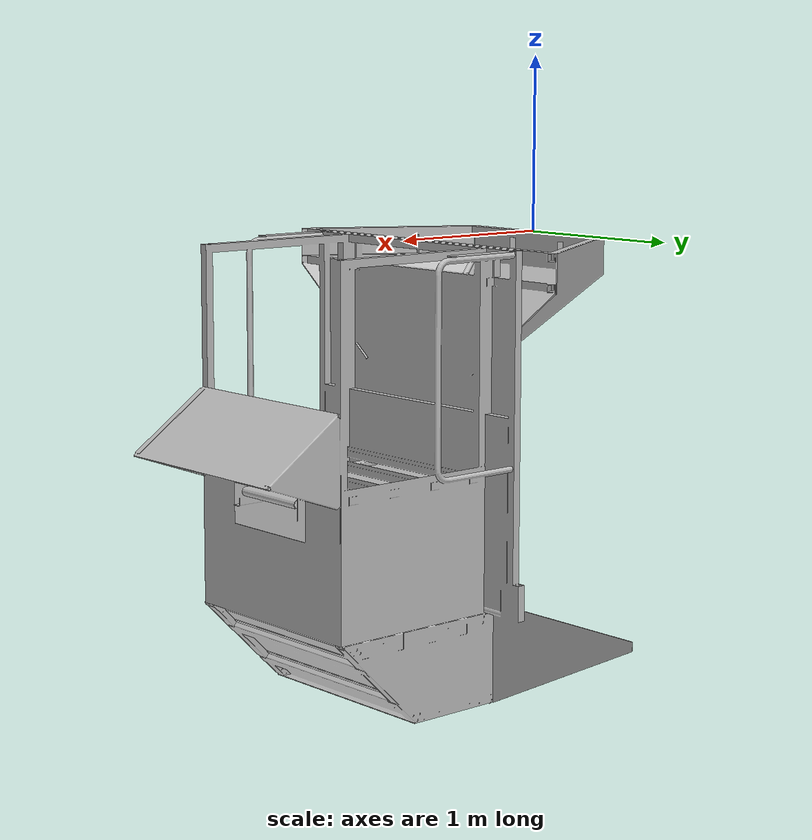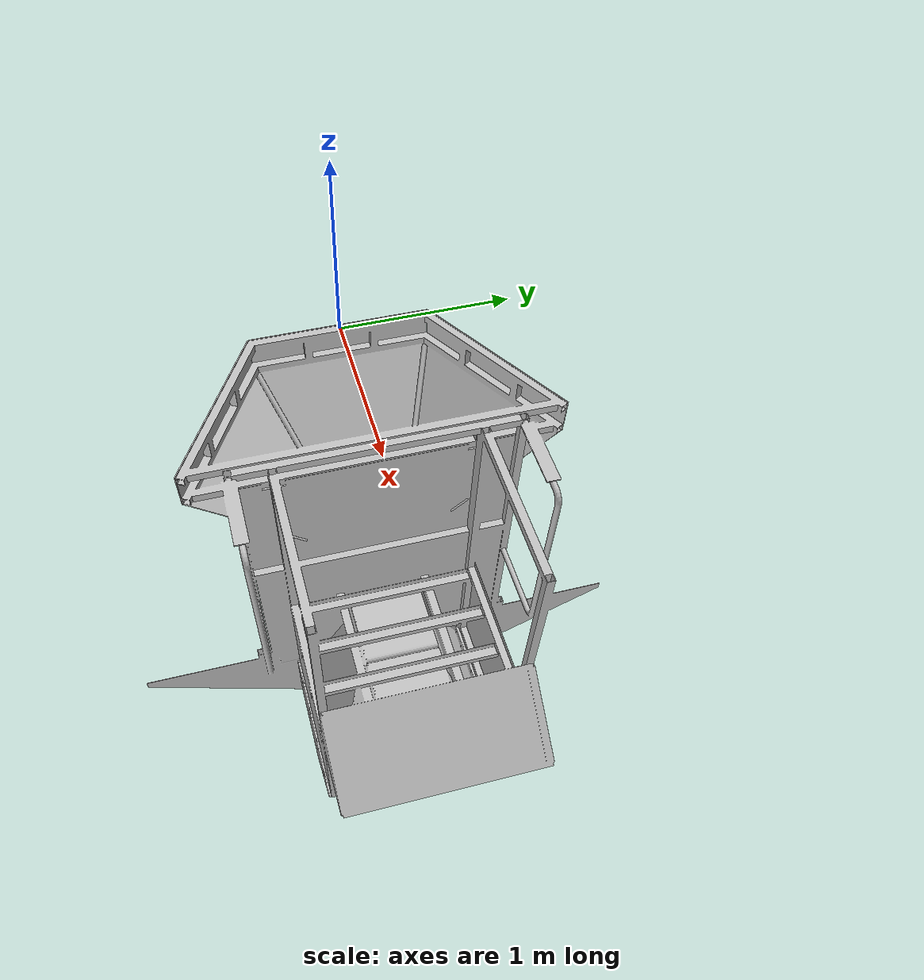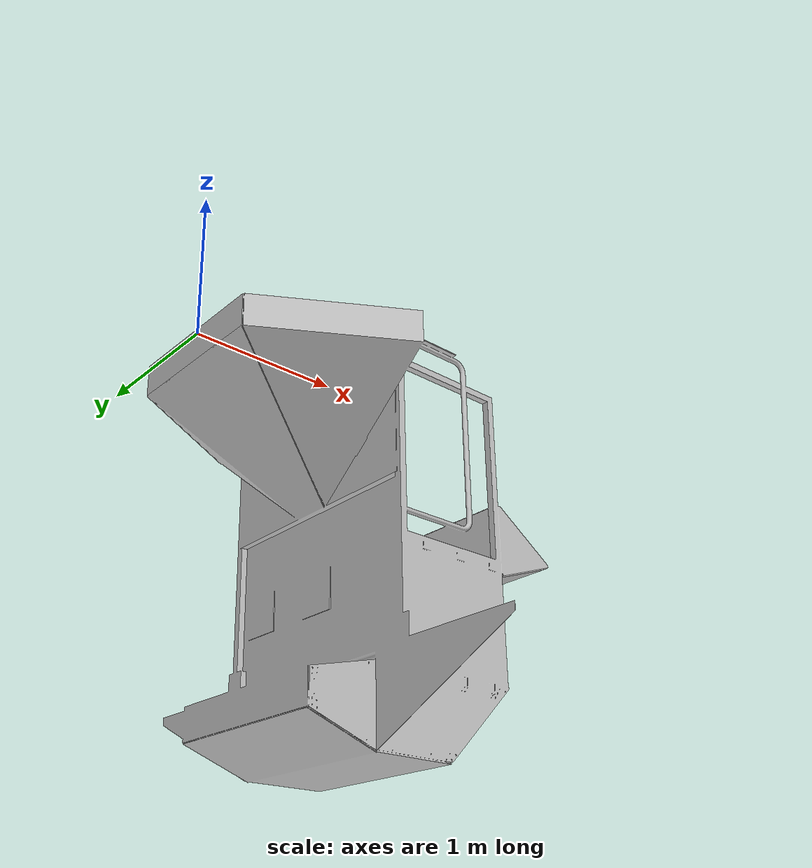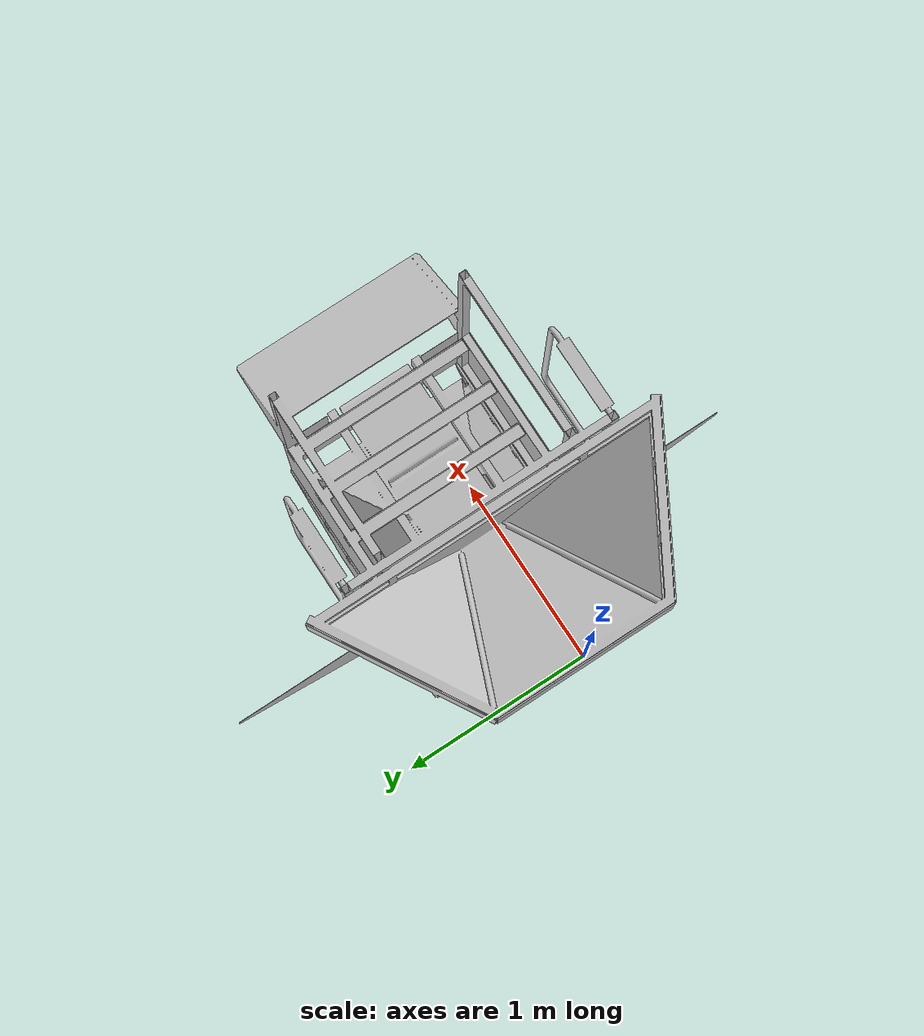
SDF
<?xml version="1.0" encoding="utf-8"?>
<sdf version="1.5">
  <model name="Speaker">
    <pose>0 0 9.60840403886835E-17 0 0 0</pose>

    <link name="Body">
      <gravity>1</gravity>
      <self_collide>0</self_collide>
      <pose>1.02085341262996 0.00216020032020092 -1.18285485825132 -1.5707963267949 -6.89607448541859E-15 1.5707963267949</pose>
      <must_be_base_link>1</must_be_base_link>
      <velocity_decay>
        <linear>0</linear>
        <angular>0</angular>
      </velocity_decay>
      <inertial>
        <mass>125.122699814822</mass>
        <pose>0 0 0 0 0 0</pose>
        <inertia>
          <ixx>114.887427073099</ixx>
          <ixy>0.0463460868437101</ixy>
          <ixz>0.0373895345881823</ixz>
          <iyy>58.9800228408217</iyy>
          <iyz>20.1071719950558</iyz>
          <izz>109.807987701156</izz>
        </inertia>
      </inertial>
      <collision name="Body_collision">
        <pose>-0.972318372250886 -0.347135305450926 -1.0983557439895 0 0 0</pose>
        <geometry>
          <mesh>
            <scale>1 1 1</scale>
            <uri>model://Speaker/meshes/Body_col.STL</uri>
          </mesh>
        </geometry>
        <surface>
          <contact>
            <ode />
          </contact>
          <friction>
            <ode>
              <mu>0</mu>
              <mu2>0</mu2>
            </ode>
          </friction>
        </surface>
      </collision>
      <visual name="Body_visual">
        <pose>-0.972318372250886 -0.347135305450926 -1.0983557439895 0 0 0</pose>
        <material>
          <ambient>0.752941176470588 0.752941176470588 0.752941176470588 1</ambient>
          <diffuse>0.752941176470588 0.752941176470588 0.752941176470588 1</diffuse>
        </material>
        <geometry>
          <mesh>
            <scale>1 1 1</scale>
            <uri>model://Speaker/meshes/Body.STL</uri>
          </mesh>
        </geometry>
      </visual>
    </link>
  </model>
</sdf>
